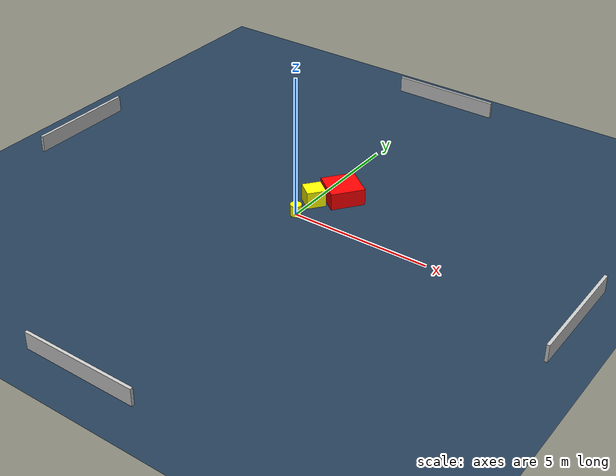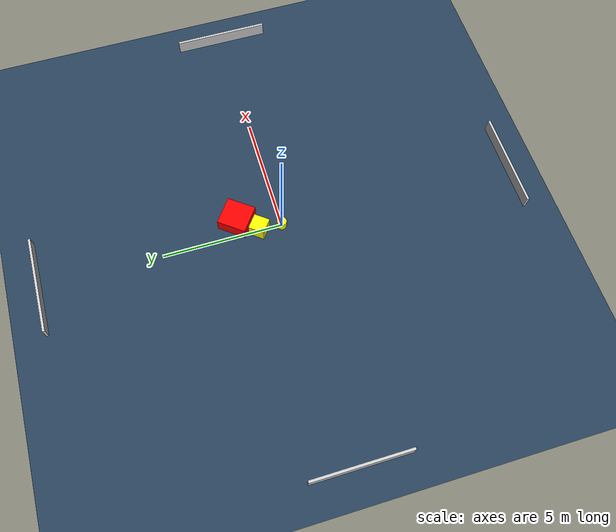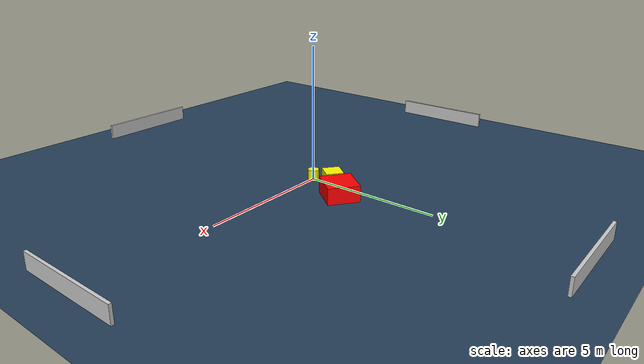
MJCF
<?xml version="1.0" ?>
<mujoco model="generated_environment">
  <option timestep="0.01" integrator="RK4" cone="elliptic"/>
  <default>
    <geom density="1"/>
  </default>
  <asset>
    <texture builtin="gradient" height="3072" name="skybox" rgb1="0.3 0.5 0.7" rgb2="0 0 0" type="skybox" width="512"/>
    <texture builtin="checker" height="300" name="groundplane" rgb1="0.2 0.3 0.4" rgb2="0.1 0.2 0.3" type="2d" width="300"/>
    <material name="groundplane" reflectance="0.2" texrepeat="5 5" texture="groundplane"/>
  </asset>
  <worldbody>
    <light dir="0 0 -1" directional="true" pos="0 0 1.5"/>
    <geom condim="3" friction="0.5 0.005 0.001" material="groundplane" name="floor" pos="0 0 0" size="0 0 0.05" type="plane"/>
    <body name="walls">
      <geom name="wall_1" condim="4" pos="-10.0 0.0 0.3" rgba="0.800000011920929 0.800000011920929 0.800000011920929 1.0" size="0.05 2.0 0.3" type="box"/>
      <geom name="wall_2" condim="4" pos="10.0 0.0 0.3" rgba="0.800000011920929 0.800000011920929 0.800000011920929 1.0" size="0.05 2.0 0.3" type="box"/>
      <geom name="wall_3" condim="4" pos="0.0 -10.0 0.3" rgba="0.800000011920929 0.800000011920929 0.800000011920929 1.0" size="2.0 0.05 0.3" type="box"/>
      <geom name="wall_4" condim="4" pos="0.0 10.0 0.3" rgba="0.800000011920929 0.800000011920929 0.800000011920929 1.0" size="2.0 0.05 0.3" type="box"/>
    </body>
    <body name="robot">
      <joint name="joint_x" type="slide" pos="0 0 0" axis="1 0 0"/>
      <joint name="joint_y" type="slide" pos="0 0 0" axis="0 1 0"/>
      <geom name="robot" type="cylinder" pos="0.0 0.0 0.2" size="0.2 0.2 0.0" mass="5.0" friction="1.0 0.005 0.0001" condim="4" rgba="1.0 1.0 0.0 1.0"/>
    </body>
    <body name="obstacle_1_movable">
      <geom name="obstacle_1_movable" condim="4" pos="0.06110635461850186 0.9465446417183013 0.3" euler="0 0 52.269325390943365" friction="0.0 0.005 0.001" rgba="1.0 1.0 0.0 1.0" size="0.33178619813973864 0.32721236312754776 0.3" type="box" mass="0.1"/>
      <joint type="free"/>
    </body>
    <body name="obstacle_2_static">
      <geom name="obstacle_2_static" condim="4" pos="0.70692655118749 1.7287540028521247 0.3" euler="0 0 232.8578319416582" friction="0.0 0.005 0.001" rgba="1.0 0.0 0.0 1.0" size="0.6017206040312062 0.5801227448271458 0.3" type="box"/>
    </body>
  </worldbody>
  <actuator>
    <motor name="actuator_x" joint="joint_x" gear="1" ctrlrange="-1 1"/>
    <motor name="actuator_y" joint="joint_y" gear="1" ctrlrange="-1 1"/>
  </actuator>
</mujoco>
